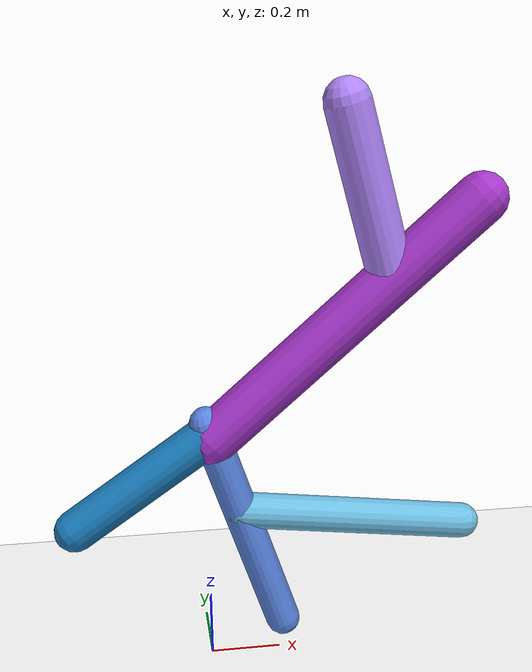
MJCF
<mujoco model="morphology">
  <option timestep="0.01"/>
  <default>
    <default class="/"/>
  </default>
  <asset>
    <texture name="texplane" type="2d" builtin="checker" rgb1="0.1 0.2 0.3" rgb2="0.2 0.3 0.4" width="300" height="300"/>
    <material name="MatPlane" class="/" texture="texplane" texrepeat="20 20" specular="1" shininess="1" reflectance="0.5"/>
  </asset>
  <worldbody>
    <light name="//unnamed_light_0" class="/" directional="true" pos="0 0 1.5" dir="0 0 -1.3" cutoff="1e+02" exponent="1" diffuse="1 1 1" specular="0.1 0.1 0.1"/>
    <geom name="ground" class="/" type="plane" size="15 15 0.5" material="MatPlane" rgba="1 1 1 1"/>
    <body name="body" pos="0 0 0.74">
      <geom name="geom0" class="/" type="capsule" contype="1" conaffinity="1" condim="3" size="0.049" rgba="0.35 0.52 0.88 1" friction="0.4 0.1 0.1" fromto="0 0 0 0.21 0 -0.64"/>
      <body name="body1" pos="0.091 0 -0.27">
        <geom name="geom1" class="/" type="capsule" contype="1" conaffinity="1" condim="3" size="0.051" rgba="0.42 0.74 0.88 1" friction="0.4 0.1 0.1" fromto="0 0 0 0.64 0 -0.085"/>
        <joint name="joint1" class="/" type="hinge" axis="0 1 0" limited="true" stiffness="20" range="-42 42" armature="0.1" damping="2"/>
      </body>
      <body name="body2" pos="0.0099 0 -0.03">
        <geom name="geom2" class="/" type="capsule" contype="1" conaffinity="1" condim="3" size="0.059" rgba="0.1 0.49 0.74 1" friction="0.4 0.1 0.1" fromto="0 0 0 -0.38 0 -0.27"/>
        <joint name="joint2" class="/" type="hinge" axis="0 1 0" limited="true" stiffness="20" range="-38 38" armature="0.1" damping="2"/>
      </body>
      <body name="body3" pos="0.015 0 -0.046">
        <geom name="geom3" class="/" type="capsule" contype="1" conaffinity="1" condim="3" size="0.07" rgba="0.65 0.21 0.8 1" friction="0.4 0.1 0.1" fromto="0 0 0 0.71 0 0.64"/>
        <body name="body4" pos="0.48 0 0.43">
          <geom name="geom4" class="/" type="capsule" contype="1" conaffinity="1" condim="3" size="0.062" rgba="0.69 0.52 0.98 1" friction="0.4 0.1 0.1" fromto="0 0 0 -0.13 0 0.46"/>
          <joint name="joint4" class="/" type="hinge" axis="0 1 0" limited="true" stiffness="20" range="-35 35" armature="0.1" damping="2"/>
        </body>
        <joint name="joint3" class="/" type="hinge" axis="0 1 0" limited="true" stiffness="20" range="-46 46" armature="0.1" damping="2"/>
      </body>
      <joint name="rootx" class="/" type="slide" axis="1 0 0" limited="false" stiffness="0" armature="0" damping="0"/>
      <joint name="rootz" class="/" type="slide" axis="0 0 1" limited="false" stiffness="0" armature="0" damping="0"/>
      <joint name="rooty" class="/" type="hinge" axis="0 1 0" limited="false" stiffness="0" armature="0" damping="0"/>
    </body>
  </worldbody>
  <actuator>
    <motor name="motor1" class="/" ctrllimited="true" ctrlrange="-1 1" gear="1.2e+02" joint="joint1"/>
    <motor name="motor2" class="/" ctrllimited="true" ctrlrange="-1 1" gear="2e+02" joint="joint2"/>
    <motor name="motor4" class="/" ctrllimited="true" ctrlrange="-1 1" gear="1.9e+02" joint="joint4"/>
    <motor name="motor3" class="/" ctrllimited="true" ctrlrange="-1 1" gear="1.4e+02" joint="joint3"/>
  </actuator>
  <sensor>
    <subtreelinvel name="velocity" body="body"/>
  </sensor>
</mujoco>
